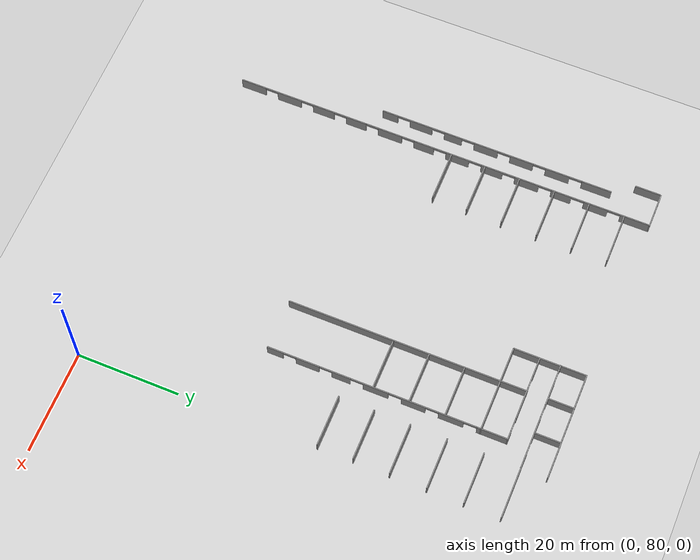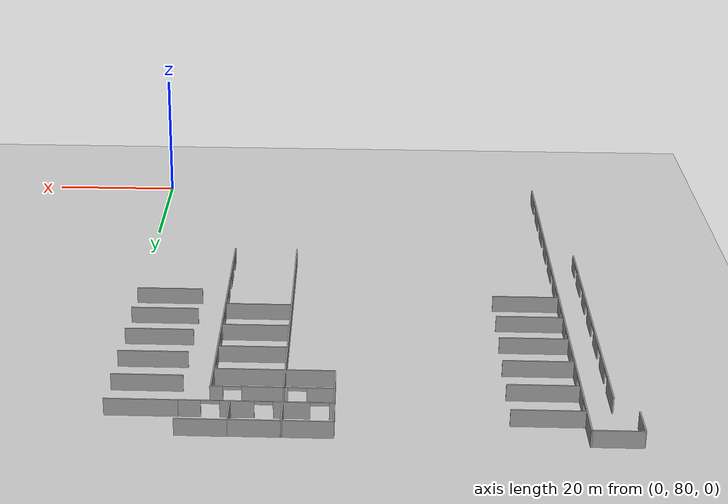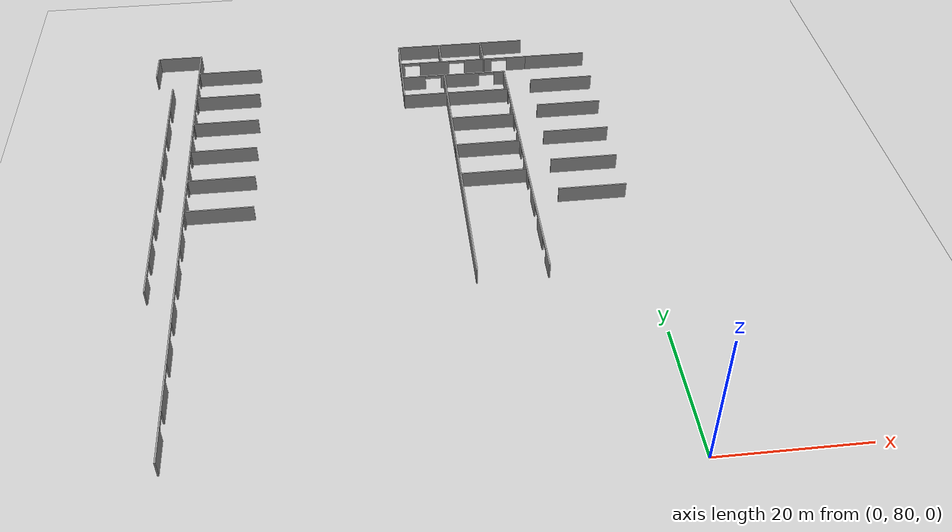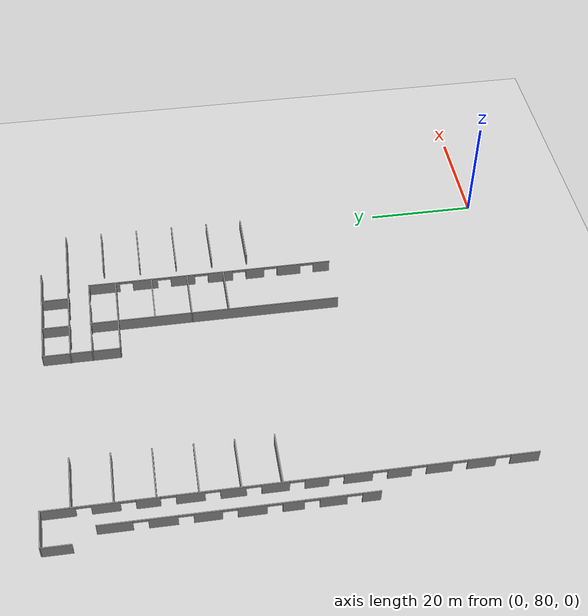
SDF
<sdf version="1.6">
 <world name="default">
  <model name="ground_plane">
   <static>1</static>
   <link name="link">
    <collision name="collision">
     <geometry><plane><normal>0 0 1</normal><size>100 100</size></plane></geometry>
     <surface><friction><ode><mu>100</mu><mu2>50</mu2></ode></friction></surface>
    </collision>
    <visual name="visual">
     <cast_shadows>0</cast_shadows>
     <geometry><plane><normal>0 0 1</normal><size>100 100</size></plane></geometry>
     <material>
      <script><uri>file://media/materials/scripts/gazebo.material</uri><name>Gazebo/Grey</name></script>
     </material>
    </visual>
   </link>
  </model>
  <model name="Jacaranda_v4_clone_0">
   <link name="Wall_0">
    <pose>-8.84429 26.2823 0 0 -0 0</pose>
    <visual name="Wall_0_Visual_0">
     <pose>-10.1136 0 1.25 0 -0 0</pose>
     <geometry><box><size>0.772872 0.2 2.5</size></box></geometry>
     <material>
      <script><uri>file://media/materials/scripts/gazebo.material</uri><name>Gazebo/Grey</name></script>
     </material>
    </visual>
    <collision name="Wall_0_Collision_0">
     <geometry><box><size>0.772872 0.2 2.5</size></box></geometry>
     <pose>-10.1136 0 1.25 0 -0 0</pose>
    </collision>
    <visual name="Wall_0_Visual_1">
     <pose>-4.7572 0 1.25 0 -0 0</pose>
     <geometry><box><size>4.93987 0.2 2.5</size></box></geometry>
     <material>
      <script><uri>file://media/materials/scripts/gazebo.material</uri><name>Gazebo/Grey</name></script>
     </material>
    </visual>
    <collision name="Wall_0_Collision_1">
     <geometry><box><size>4.93987 0.2 2.5</size></box></geometry>
     <pose>-4.7572 0 1.25 0 -0 0</pose>
    </collision>
    <visual name="Wall_0_Visual_2">
     <pose>2.52116 0 1.25 0 -0 0</pose>
     <geometry><box><size>4.61684 0.2 2.5</size></box></geometry>
     <material>
      <script><uri>file://media/materials/scripts/gazebo.material</uri><name>Gazebo/Grey</name></script>
     </material>
    </visual>
    <collision name="Wall_0_Collision_2">
     <geometry><box><size>4.61684 0.2 2.5</size></box></geometry>
     <pose>2.52116 0 1.25 0 -0 0</pose>
    </collision>
    <visual name="Wall_0_Visual_3">
     <pose>8.91479 0 1.25 0 -0 0</pose>
     <geometry><box><size>3.17042 0.2 2.5</size></box></geometry>
     <material>
      <script><uri>file://media/materials/scripts/gazebo.material</uri><name>Gazebo/Grey</name></script>
     </material>
    </visual>
    <collision name="Wall_0_Collision_3">
     <geometry><box><size>3.17042 0.2 2.5</size></box></geometry>
     <pose>8.91479 0 1.25 0 -0 0</pose>
    </collision>
    <visual name="Wall_0_Visual_4">
     <pose>-8.47713 0 2.25 0 -0 0</pose>
     <geometry><box><size>2.5 0.2 0.5</size></box></geometry>
     <material>
      <script><uri>file://media/materials/scripts/gazebo.material</uri><name>Gazebo/Grey</name></script>
     </material>
    </visual>
    <collision name="Wall_0_Collision_4">
     <geometry><box><size>2.5 0.2 0.5</size></box></geometry>
     <pose>-8.47713 0 2.25 0 -0 0</pose>
    </collision>
    <visual name="Wall_0_Visual_5">
     <pose>-1.03726 0 2.25 0 -0 0</pose>
     <geometry><box><size>2.5 0.2 0.5</size></box></geometry>
     <material>
      <script><uri>file://media/materials/scripts/gazebo.material</uri><name>Gazebo/Grey</name></script>
     </material>
    </visual>
    <collision name="Wall_0_Collision_5">
     <geometry><box><size>2.5 0.2 0.5</size></box></geometry>
     <pose>-1.03726 0 2.25 0 -0 0</pose>
    </collision>
    <visual name="Wall_0_Visual_6">
     <pose>6.07958 0 2.25 0 -0 0</pose>
     <geometry><box><size>2.5 0.2 0.5</size></box></geometry>
     <material>
      <script><uri>file://media/materials/scripts/gazebo.material</uri><name>Gazebo/Grey</name></script>
     </material>
    </visual>
    <collision name="Wall_0_Collision_6">
     <geometry><box><size>2.5 0.2 0.5</size></box></geometry>
     <pose>6.07958 0 2.25 0 -0 0</pose>
    </collision>
   </link>
   <link name="Wall_2">
    <collision name="Wall_2_Collision">
     <geometry><box><size>10 0.2 2.5</size></box></geometry>
     <pose>0 0 1.25 0 -0 0</pose>
    </collision>
    <visual name="Wall_2_Visual">
     <pose>0 0 1.25 0 -0 0</pose>
     <geometry><box><size>10 0.2 2.5</size></box></geometry>
     <material>
      <script><uri>file://media/materials/scripts/gazebo.material</uri><name>Gazebo/Grey</name></script>
     </material>
    </visual>
    <velocity_decay><linear>0</linear><angular>0</angular></velocity_decay>
    <pose>-7.44654 3.56016 0 0 -0 0</pose>
   </link>
   <link name="Wall_22">
    <collision name="Wall_22_Collision">
     <geometry><box><size>5 0.2 2.5</size></box></geometry>
     <pose>0 0 1.25 0 -0 0</pose>
    </collision>
    <visual name="Wall_22_Visual">
     <pose>0 0 1.25 0 -0 0</pose>
     <geometry><box><size>5 0.2 2.5</size></box></geometry>
     <material>
      <script><uri>file://media/materials/scripts/gazebo.material</uri><name>Gazebo/Grey</name></script>
     </material>
    </visual>
    <velocity_decay><linear>0</linear><angular>0</angular></velocity_decay>
    <pose>-19.2226 28.7685 0 0 -0 1.5708</pose>
   </link>
   <link name="Wall_24">
    <collision name="Wall_24_Collision">
     <geometry><box><size>7 0.2 2.5</size></box></geometry>
     <pose>0 0 1.25 0 -0 0</pose>
    </collision>
    <visual name="Wall_24_Visual">
     <pose>0 0 1.25 0 -0 0</pose>
     <geometry><box><size>7 0.2 2.5</size></box></geometry>
     <material>
      <script><uri>file://media/materials/scripts/gazebo.material</uri><name>Gazebo/Grey</name></script>
     </material>
    </visual>
    <velocity_decay><linear>0</linear><angular>0</angular></velocity_decay>
    <pose>-15.7827 31.2426 0 0 -0 0</pose>
   </link>
   <link name="Wall_26">
    <collision name="Wall_26_Collision">
     <geometry><box><size>5 0.2 2.5</size></box></geometry>
     <pose>0 0 1.25 0 -0 0</pose>
    </collision>
    <visual name="Wall_26_Visual">
     <pose>0 0 1.25 0 -0 0</pose>
     <geometry><box><size>5 0.2 2.5</size></box></geometry>
     <material>
      <script><uri>file://media/materials/scripts/gazebo.material</uri><name>Gazebo/Grey</name></script>
     </material>
    </visual>
    <velocity_decay><linear>0</linear><angular>0</angular></velocity_decay>
    <pose>-12.42 28.8426 0 0 0 -1.5708</pose>
   </link>
   <link name="Wall_29">
    <collision name="Wall_29_Collision">
     <geometry><box><size>7 0.2 2.5</size></box></geometry>
     <pose>0 0 1.25 0 -0 0</pose>
    </collision>
    <visual name="Wall_29_Visual">
     <pose>0 0 1.25 0 -0 0</pose>
     <geometry><box><size>7 0.2 2.5</size></box></geometry>
     <material>
      <script><uri>file://media/materials/scripts/gazebo.material</uri><name>Gazebo/Grey</name></script>
     </material>
    </visual>
    <velocity_decay><linear>0</linear><angular>0</angular></velocity_decay>
    <pose>-8.85634 31.2426 0 0 -0 0</pose>
   </link>
   <link name="Wall_31">
    <collision name="Wall_31_Collision">
     <geometry><box><size>5 0.2 2.5</size></box></geometry>
     <pose>0 0 1.25 0 -0 0</pose>
    </collision>
    <visual name="Wall_31_Visual">
     <pose>0 0 1.25 0 -0 0</pose>
     <geometry><box><size>5 0.2 2.5</size></box></geometry>
     <material>
      <script><uri>file://media/materials/scripts/gazebo.material</uri><name>Gazebo/Grey</name></script>
     </material>
    </visual>
    <velocity_decay><linear>0</linear><angular>0</angular></velocity_decay>
    <pose>-5.3828 28.6789 0 0 0 -1.5708</pose>
   </link>
   <link name="Wall_33">
    <collision name="Wall_33_Collision">
     <geometry><box><size>7 0.2 2.5</size></box></geometry>
     <pose>0 0 1.25 0 -0 0</pose>
    </collision>
    <visual name="Wall_33_Visual">
     <pose>0 0 1.25 0 -0 0</pose>
     <geometry><box><size>7 0.2 2.5</size></box></geometry>
     <material>
      <script><uri>file://media/materials/scripts/gazebo.material</uri><name>Gazebo/Grey</name></script>
     </material>
    </visual>
    <velocity_decay><linear>0</linear><angular>0</angular></velocity_decay>
    <pose>-1.87207 31.2789 0 0 -0 0</pose>
   </link>
   <link name="Wall_39">
    <collision name="Wall_39_Collision">
     <geometry><box><size>4 0.2 2.5</size></box></geometry>
     <pose>0 0 1.25 0 -0 0</pose>
    </collision>
    <visual name="Wall_39_Visual">
     <pose>0 0 1.25 0 -0 0</pose>
     <geometry><box><size>4 0.2 2.5</size></box></geometry>
     <material>
      <script><uri>file://media/materials/scripts/gazebo.material</uri><name>Gazebo/Grey</name></script>
     </material>
    </visual>
    <velocity_decay><linear>0</linear><angular>0</angular></velocity_decay>
    <pose>-19.206 24.2121 0 0 0 -1.5708</pose>
   </link>
   <link name="Wall_41">
    <pose>-10.8339 22.3118 0 0 -0 0</pose>
    <visual name="Wall_41_Visual_0">
     <pose>-6.54675 0 1.25 0 -0 0</pose>
     <geometry><box><size>3.9065 0.2 2.5</size></box></geometry>
     <material>
      <script><uri>file://media/materials/scripts/gazebo.material</uri><name>Gazebo/Grey</name></script>
     </material>
    </visual>
    <collision name="Wall_41_Collision_0">
     <geometry><box><size>3.9065 0.2 2.5</size></box></geometry>
     <pose>-6.54675 0 1.25 0 -0 0</pose>
    </collision>
    <visual name="Wall_41_Visual_1">
     <pose>1.04072 0 1.25 0 -0 0</pose>
     <geometry><box><size>6.26843 0.2 2.5</size></box></geometry>
     <material>
      <script><uri>file://media/materials/scripts/gazebo.material</uri><name>Gazebo/Grey</name></script>
     </material>
    </visual>
    <collision name="Wall_41_Collision_1">
     <geometry><box><size>6.26843 0.2 2.5</size></box></geometry>
     <pose>1.04072 0 1.25 0 -0 0</pose>
    </collision>
    <visual name="Wall_41_Visual_2">
     <pose>7.58747 0 1.25 0 -0 0</pose>
     <geometry><box><size>1.82507 0.2 2.5</size></box></geometry>
     <material>
      <script><uri>file://media/materials/scripts/gazebo.material</uri><name>Gazebo/Grey</name></script>
     </material>
    </visual>
    <collision name="Wall_41_Collision_2">
     <geometry><box><size>1.82507 0.2 2.5</size></box></geometry>
     <pose>7.58747 0 1.25 0 -0 0</pose>
    </collision>
    <visual name="Wall_41_Visual_3">
     <pose>-3.3435 0 2.25 0 -0 0</pose>
     <geometry><box><size>2.5 0.2 0.5</size></box></geometry>
     <material>
      <script><uri>file://media/materials/scripts/gazebo.material</uri><name>Gazebo/Grey</name></script>
     </material>
    </visual>
    <collision name="Wall_41_Collision_3">
     <geometry><box><size>2.5 0.2 0.5</size></box></geometry>
     <pose>-3.3435 0 2.25 0 -0 0</pose>
    </collision>
    <visual name="Wall_41_Visual_4">
     <pose>5.42493 0 2.25 0 -0 0</pose>
     <geometry><box><size>2.5 0.2 0.5</size></box></geometry>
     <material>
      <script><uri>file://media/materials/scripts/gazebo.material</uri><name>Gazebo/Grey</name></script>
     </material>
    </visual>
    <collision name="Wall_41_Collision_4">
     <geometry><box><size>2.5 0.2 0.5</size></box></geometry>
     <pose>5.42493 0 2.25 0 -0 0</pose>
    </collision>
   </link>
   <link name="Wall_43">
    <pose>-2.46558 -0.8445 0 0 0 -1.5708</pose>
    <visual name="Wall_43_Visual_0">
     <pose>-20.2936 0 1.25 0 -0 0</pose>
     <geometry><box><size>5.88874 0.2 2.5</size></box></geometry>
     <material>
      <script><uri>file://media/materials/scripts/gazebo.material</uri><name>Gazebo/Grey</name></script>
     </material>
    </visual>
    <collision name="Wall_43_Collision_0">
     <geometry><box><size>5.88874 0.2 2.5</size></box></geometry>
     <pose>-20.2936 0 1.25 0 -0 0</pose>
    </collision>
    <visual name="Wall_43_Visual_1">
     <pose>-12.4598 0 1.25 0 -0 0</pose>
     <geometry><box><size>4.77894 0.2 2.5</size></box></geometry>
     <material>
      <script><uri>file://media/materials/scripts/gazebo.material</uri><name>Gazebo/Grey</name></script>
     </material>
    </visual>
    <collision name="Wall_43_Collision_1">
     <geometry><box><size>4.77894 0.2 2.5</size></box></geometry>
     <pose>-12.4598 0 1.25 0 -0 0</pose>
    </collision>
    <visual name="Wall_43_Visual_2">
     <pose>-5.24423 0 1.25 0 -0 0</pose>
     <geometry><box><size>4.65218 0.2 2.5</size></box></geometry>
     <material>
      <script><uri>file://media/materials/scripts/gazebo.material</uri><name>Gazebo/Grey</name></script>
     </material>
    </visual>
    <collision name="Wall_43_Collision_2">
     <geometry><box><size>4.65218 0.2 2.5</size></box></geometry>
     <pose>-5.24423 0 1.25 0 -0 0</pose>
    </collision>
    <visual name="Wall_43_Visual_3">
     <pose>2.00205 0 1.25 0 -0 0</pose>
     <geometry><box><size>4.84039 0.2 2.5</size></box></geometry>
     <material>
      <script><uri>file://media/materials/scripts/gazebo.material</uri><name>Gazebo/Grey</name></script>
     </material>
    </visual>
    <collision name="Wall_43_Collision_3">
     <geometry><box><size>4.84039 0.2 2.5</size></box></geometry>
     <pose>2.00205 0 1.25 0 -0 0</pose>
    </collision>
    <visual name="Wall_43_Visual_4">
     <pose>8.7199 0 1.25 0 -0 0</pose>
     <geometry><box><size>3.5953 0.2 2.5</size></box></geometry>
     <material>
      <script><uri>file://media/materials/scripts/gazebo.material</uri><name>Gazebo/Grey</name></script>
     </material>
    </visual>
    <collision name="Wall_43_Collision_4">
     <geometry><box><size>3.5953 0.2 2.5</size></box></geometry>
     <pose>8.7199 0 1.25 0 -0 0</pose>
    </collision>
    <visual name="Wall_43_Visual_5">
     <pose>15.2946 0 1.25 0 -0 0</pose>
     <geometry><box><size>4.55401 0.2 2.5</size></box></geometry>
     <material>
      <script><uri>file://media/materials/scripts/gazebo.material</uri><name>Gazebo/Grey</name></script>
     </material>
    </visual>
    <collision name="Wall_43_Collision_5">
     <geometry><box><size>4.55401 0.2 2.5</size></box></geometry>
     <pose>15.2946 0 1.25 0 -0 0</pose>
    </collision>
    <visual name="Wall_43_Visual_6">
     <pose>21.6548 0 1.25 0 -0 0</pose>
     <geometry><box><size>3.16644 0.2 2.5</size></box></geometry>
     <material>
      <script><uri>file://media/materials/scripts/gazebo.material</uri><name>Gazebo/Grey</name></script>
     </material>
    </visual>
    <collision name="Wall_43_Collision_6">
     <geometry><box><size>3.16644 0.2 2.5</size></box></geometry>
     <pose>21.6548 0 1.25 0 -0 0</pose>
    </collision>
    <visual name="Wall_43_Visual_7">
     <pose>-16.0993 0 2.25 0 -0 0</pose>
     <geometry><box><size>2.5 0.2 0.5</size></box></geometry>
     <material>
      <script><uri>file://media/materials/scripts/gazebo.material</uri><name>Gazebo/Grey</name></script>
     </material>
    </visual>
    <collision name="Wall_43_Collision_7">
     <geometry><box><size>2.5 0.2 0.5</size></box></geometry>
     <pose>-16.0993 0 2.25 0 -0 0</pose>
    </collision>
    <visual name="Wall_43_Visual_8">
     <pose>-8.82032 0 2.25 0 -0 0</pose>
     <geometry><box><size>2.5 0.2 0.5</size></box></geometry>
     <material>
      <script><uri>file://media/materials/scripts/gazebo.material</uri><name>Gazebo/Grey</name></script>
     </material>
    </visual>
    <collision name="Wall_43_Collision_8">
     <geometry><box><size>2.5 0.2 0.5</size></box></geometry>
     <pose>-8.82032 0 2.25 0 -0 0</pose>
    </collision>
    <visual name="Wall_43_Visual_9">
     <pose>-1.66814 0 2.25 0 -0 0</pose>
     <geometry><box><size>2.5 0.2 0.5</size></box></geometry>
     <material>
      <script><uri>file://media/materials/scripts/gazebo.material</uri><name>Gazebo/Grey</name></script>
     </material>
    </visual>
    <collision name="Wall_43_Collision_9">
     <geometry><box><size>2.5 0.2 0.5</size></box></geometry>
     <pose>-1.66814 0 2.25 0 -0 0</pose>
    </collision>
    <visual name="Wall_43_Visual_10">
     <pose>5.67225 0 2.25 0 -0 0</pose>
     <geometry><box><size>2.5 0.2 0.5</size></box></geometry>
     <material>
      <script><uri>file://media/materials/scripts/gazebo.material</uri><name>Gazebo/Grey</name></script>
     </material>
    </visual>
    <collision name="Wall_43_Collision_10">
     <geometry><box><size>2.5 0.2 0.5</size></box></geometry>
     <pose>5.67225 0 2.25 0 -0 0</pose>
    </collision>
    <visual name="Wall_43_Visual_11">
     <pose>11.7676 0 2.25 0 -0 0</pose>
     <geometry><box><size>2.5 0.2 0.5</size></box></geometry>
     <material>
      <script><uri>file://media/materials/scripts/gazebo.material</uri><name>Gazebo/Grey</name></script>
     </material>
    </visual>
    <collision name="Wall_43_Collision_11">
     <geometry><box><size>2.5 0.2 0.5</size></box></geometry>
     <pose>11.7676 0 2.25 0 -0 0</pose>
    </collision>
    <visual name="Wall_43_Visual_12">
     <pose>18.8216 0 2.25 0 -0 0</pose>
     <geometry><box><size>2.5 0.2 0.5</size></box></geometry>
     <material>
      <script><uri>file://media/materials/scripts/gazebo.material</uri><name>Gazebo/Grey</name></script>
     </material>
    </visual>
    <collision name="Wall_43_Collision_12">
     <geometry><box><size>2.5 0.2 0.5</size></box></geometry>
     <pose>18.8216 0 2.25 0 -0 0</pose>
    </collision>
   </link>
   <link name="Wall_45">
    <collision name="Wall_45_Collision">
     <geometry><box><size>5 0.2 2.5</size></box></geometry>
     <pose>0 0 1.25 0 -0 0</pose>
    </collision>
    <visual name="Wall_45_Visual">
     <pose>0 0 1.25 0 -0 0</pose>
     <geometry><box><size>5 0.2 2.5</size></box></geometry>
     <material>
      <script><uri>file://media/materials/scripts/gazebo.material</uri><name>Gazebo/Grey</name></script>
     </material>
    </visual>
    <velocity_decay><linear>0</linear><angular>0</angular></velocity_decay>
    <pose>-19.2149 19.8047 0 0 0 -1.5708</pose>
   </link>
   <link name="Wall_47">
    <collision name="Wall_47_Collision">
     <geometry><box><size>16.9069 0.2 2.5</size></box></geometry>
     <pose>0 0 1.25 0 -0 0</pose>
    </collision>
    <visual name="Wall_47_Visual">
     <pose>0 0 1.25 0 -0 0</pose>
     <geometry><box><size>16.9069 0.2 2.5</size></box></geometry>
     <material>
      <script><uri>file://media/materials/scripts/gazebo.material</uri><name>Gazebo/Grey</name></script>
     </material>
    </visual>
    <velocity_decay><linear>0</linear><angular>0</angular></velocity_decay>
    <pose>-10.7923 17.2628 0 0 -0 0</pose>
   </link>
   <link name="Wall_49">
    <collision name="Wall_49_Collision">
     <geometry><box><size>46.4765 0.2 2.5</size></box></geometry>
     <pose>0 0 1.25 0 -0 0</pose>
    </collision>
    <visual name="Wall_49_Visual">
     <pose>0 0 1.25 0 -0 0</pose>
     <geometry><box><size>46.4765 0.2 2.5</size></box></geometry>
     <material>
      <script><uri>file://media/materials/scripts/gazebo.material</uri><name>Gazebo/Grey</name></script>
     </material>
    </visual>
    <velocity_decay><linear>0</linear><angular>0</angular></velocity_decay>
    <pose>-12.3393 -0.801467 0 0 0 -1.5708</pose>
   </link>
   <link name="Wall_55">
    <collision name="Wall_55_Collision">
     <geometry><box><size>10 0.2 2.5</size></box></geometry>
     <pose>0 0 1.25 0 -0 0</pose>
    </collision>
    <visual name="Wall_55_Visual">
     <pose>0 0 1.25 0 -0 0</pose>
     <geometry><box><size>10 0.2 2.5</size></box></geometry>
     <material>
      <script><uri>file://media/materials/scripts/gazebo.material</uri><name>Gazebo/Grey</name></script>
     </material>
    </visual>
    <velocity_decay><linear>0</linear><angular>0</angular></velocity_decay>
    <pose>-7.39012 10.4267 0 0 -0 3.14159</pose>
   </link>
   <link name="Wall_59">
    <collision name="Wall_59_Collision">
     <geometry><box><size>10 0.2 2.5</size></box></geometry>
     <pose>0 0 1.25 0 -0 0</pose>
    </collision>
    <visual name="Wall_59_Visual">
     <pose>0 0 1.25 0 -0 0</pose>
     <geometry><box><size>10 0.2 2.5</size></box></geometry>
     <material>
      <script><uri>file://media/materials/scripts/gazebo.material</uri><name>Gazebo/Grey</name></script>
     </material>
    </visual>
    <velocity_decay><linear>0</linear><angular>0</angular></velocity_decay>
    <pose>-7.43285 -3.41806 0 0 -0 0</pose>
   </link>
   <link name="Wall_67">
    <collision name="Wall_67_Collision">
     <geometry><box><size>10 0.2 2.5</size></box></geometry>
     <pose>0 0 1.25 0 -0 0</pose>
    </collision>
    <visual name="Wall_67_Visual">
     <pose>0 0 1.25 0 -0 0</pose>
     <geometry><box><size>10 0.2 2.5</size></box></geometry>
     <material>
      <script><uri>file://media/materials/scripts/gazebo.material</uri><name>Gazebo/Grey</name></script>
     </material>
    </visual>
    <velocity_decay><linear>0</linear><angular>0</angular></velocity_decay>
    <pose>6.51966 26.3099 0 0 -0 0</pose>
   </link>
   <link name="Wall_71">
    <collision name="Wall_71_Collision">
     <geometry><box><size>10 0.2 2.5</size></box></geometry>
     <pose>0 0 1.25 0 -0 0</pose>
    </collision>
    <visual name="Wall_71_Visual">
     <pose>0 0 1.25 0 -0 0</pose>
     <geometry><box><size>10 0.2 2.5</size></box></geometry>
     <material>
      <script><uri>file://media/materials/scripts/gazebo.material</uri><name>Gazebo/Grey</name></script>
     </material>
    </visual>
    <velocity_decay><linear>0</linear><angular>0</angular></velocity_decay>
    <pose>6.52213 19.3829 0 0 -0 0</pose>
   </link>
   <link name="Wall_73">
    <collision name="Wall_73_Collision">
     <geometry><box><size>10 0.2 2.5</size></box></geometry>
     <pose>0 0 1.25 0 -0 0</pose>
    </collision>
    <visual name="Wall_73_Visual">
     <pose>0 0 1.25 0 -0 0</pose>
     <geometry><box><size>10 0.2 2.5</size></box></geometry>
     <material>
      <script><uri>file://media/materials/scripts/gazebo.material</uri><name>Gazebo/Grey</name></script>
     </material>
    </visual>
    <velocity_decay><linear>0</linear><angular>0</angular></velocity_decay>
    <pose>6.52323 12.4215 0 0 -0 0</pose>
   </link>
   <link name="Wall_75">
    <collision name="Wall_75_Collision">
     <geometry><box><size>10 0.2 2.5</size></box></geometry>
     <pose>0 0 1.25 0 -0 0</pose>
    </collision>
    <visual name="Wall_75_Visual">
     <pose>0 0 1.25 0 -0 0</pose>
     <geometry><box><size>10 0.2 2.5</size></box></geometry>
     <material>
      <script><uri>file://media/materials/scripts/gazebo.material</uri><name>Gazebo/Grey</name></script>
     </material>
    </visual>
    <velocity_decay><linear>0</linear><angular>0</angular></velocity_decay>
    <pose>6.45075 5.39511 0 0 -0 0</pose>
   </link>
   <link name="Wall_77">
    <collision name="Wall_77_Collision">
     <geometry><box><size>10 0.2 2.5</size></box></geometry>
     <pose>0 0 1.25 0 -0 0</pose>
    </collision>
    <visual name="Wall_77_Visual">
     <pose>0 0 1.25 0 -0 0</pose>
     <geometry><box><size>10 0.2 2.5</size></box></geometry>
     <material>
      <script><uri>file://media/materials/scripts/gazebo.material</uri><name>Gazebo/Grey</name></script>
     </material>
    </visual>
    <velocity_decay><linear>0</linear><angular>0</angular></velocity_decay>
    <pose>6.41479 -1.55896 0 0 -0 0</pose>
   </link>
   <link name="Wall_79">
    <collision name="Wall_79_Collision">
     <geometry><box><size>10 0.2 2.5</size></box></geometry>
     <pose>0 0 1.25 0 -0 0</pose>
    </collision>
    <visual name="Wall_79_Visual">
     <pose>0 0 1.25 0 -0 0</pose>
     <geometry><box><size>10 0.2 2.5</size></box></geometry>
     <material>
      <script><uri>file://media/materials/scripts/gazebo.material</uri><name>Gazebo/Grey</name></script>
     </material>
    </visual>
    <velocity_decay><linear>0</linear><angular>0</angular></velocity_decay>
    <pose>6.41201 -8.39437 0 0 -0 0</pose>
   </link>
   <static>1</static>
   <pose>-11.2872 135.686 0 0 -0 0</pose>
  </model>
  <model name="Jacaranda_v4_clone_1">
   <link name="Wall_31">
    <collision name="Wall_31_Collision">
     <geometry><box><size>5 0.2 2.5</size></box></geometry>
     <pose>0 0 1.25 0 -0 0</pose>
    </collision>
    <visual name="Wall_31_Visual">
     <pose>0 0 1.25 0 -0 0</pose>
     <geometry><box><size>5 0.2 2.5</size></box></geometry>
     <material>
      <script><uri>file://media/materials/scripts/gazebo.material</uri><name>Gazebo/Grey</name></script>
     </material>
    </visual>
    <velocity_decay><linear>0</linear><angular>0</angular></velocity_decay>
    <pose>-5.3828 28.6789 0 0 0 -1.5708</pose>
   </link>
   <link name="Wall_33">
    <collision name="Wall_33_Collision">
     <geometry><box><size>7 0.2 2.5</size></box></geometry>
     <pose>0 0 1.25 0 -0 0</pose>
    </collision>
    <visual name="Wall_33_Visual">
     <pose>0 0 1.25 0 -0 0</pose>
     <geometry><box><size>7 0.2 2.5</size></box></geometry>
     <material>
      <script><uri>file://media/materials/scripts/gazebo.material</uri><name>Gazebo/Grey</name></script>
     </material>
    </visual>
    <velocity_decay><linear>0</linear><angular>0</angular></velocity_decay>
    <pose>-1.87207 31.2789 0 0 -0 0</pose>
   </link>
   <link name="Wall_35">
    <pose>1.50679 -10.3195 0 0 0 -1.5708</pose>
    <visual name="Wall_35_Visual_0">
     <pose>-38.7718 0 1.25 0 -0 0</pose>
     <geometry><box><size>5.89333 0.2 2.5</size></box></geometry>
     <material>
      <script><uri>file://media/materials/scripts/gazebo.material</uri><name>Gazebo/Grey</name></script>
     </material>
    </visual>
    <collision name="Wall_35_Collision_0">
     <geometry><box><size>5.89333 0.2 2.5</size></box></geometry>
     <pose>-38.7718 0 1.25 0 -0 0</pose>
    </collision>
    <visual name="Wall_35_Visual_1">
     <pose>-30.9611 0 1.25 0 -0 0</pose>
     <geometry><box><size>4.72808 0.2 2.5</size></box></geometry>
     <material>
      <script><uri>file://media/materials/scripts/gazebo.material</uri><name>Gazebo/Grey</name></script>
     </material>
    </visual>
    <collision name="Wall_35_Collision_1">
     <geometry><box><size>4.72808 0.2 2.5</size></box></geometry>
     <pose>-30.9611 0 1.25 0 -0 0</pose>
    </collision>
    <visual name="Wall_35_Visual_2">
     <pose>-24.0927 0 1.25 0 -0 0</pose>
     <geometry><box><size>4.00867 0.2 2.5</size></box></geometry>
     <material>
      <script><uri>file://media/materials/scripts/gazebo.material</uri><name>Gazebo/Grey</name></script>
     </material>
    </visual>
    <collision name="Wall_35_Collision_2">
     <geometry><box><size>4.00867 0.2 2.5</size></box></geometry>
     <pose>-24.0927 0 1.25 0 -0 0</pose>
    </collision>
    <visual name="Wall_35_Visual_3">
     <pose>-17.1876 0 1.25 0 -0 0</pose>
     <geometry><box><size>4.80162 0.2 2.5</size></box></geometry>
     <material>
      <script><uri>file://media/materials/scripts/gazebo.material</uri><name>Gazebo/Grey</name></script>
     </material>
    </visual>
    <collision name="Wall_35_Collision_3">
     <geometry><box><size>4.80162 0.2 2.5</size></box></geometry>
     <pose>-17.1876 0 1.25 0 -0 0</pose>
    </collision>
    <visual name="Wall_35_Visual_4">
     <pose>-10.1336 0 1.25 0 -0 0</pose>
     <geometry><box><size>4.3064 0.2 2.5</size></box></geometry>
     <material>
      <script><uri>file://media/materials/scripts/gazebo.material</uri><name>Gazebo/Grey</name></script>
     </material>
    </visual>
    <collision name="Wall_35_Collision_4">
     <geometry><box><size>4.3064 0.2 2.5</size></box></geometry>
     <pose>-10.1336 0 1.25 0 -0 0</pose>
    </collision>
    <visual name="Wall_35_Visual_5">
     <pose>-3.14147 0 1.25 0 -0 0</pose>
     <geometry><box><size>4.67776 0.2 2.5</size></box></geometry>
     <material>
      <script><uri>file://media/materials/scripts/gazebo.material</uri><name>Gazebo/Grey</name></script>
     </material>
    </visual>
    <collision name="Wall_35_Collision_5">
     <geometry><box><size>4.67776 0.2 2.5</size></box></geometry>
     <pose>-3.14147 0 1.25 0 -0 0</pose>
    </collision>
    <visual name="Wall_35_Visual_6">
     <pose>3.7295 0 1.25 0 -0 0</pose>
     <geometry><box><size>4.06418 0.2 2.5</size></box></geometry>
     <material>
      <script><uri>file://media/materials/scripts/gazebo.material</uri><name>Gazebo/Grey</name></script>
     </material>
    </visual>
    <collision name="Wall_35_Collision_6">
     <geometry><box><size>4.06418 0.2 2.5</size></box></geometry>
     <pose>3.7295 0 1.25 0 -0 0</pose>
    </collision>
    <visual name="Wall_35_Visual_7">
     <pose>10.6976 0 1.25 0 -0 0</pose>
     <geometry><box><size>4.872 0.2 2.5</size></box></geometry>
     <material>
      <script><uri>file://media/materials/scripts/gazebo.material</uri><name>Gazebo/Grey</name></script>
     </material>
    </visual>
    <collision name="Wall_35_Collision_7">
     <geometry><box><size>4.872 0.2 2.5</size></box></geometry>
     <pose>10.6976 0 1.25 0 -0 0</pose>
    </collision>
    <visual name="Wall_35_Visual_8">
     <pose>17.7003 0 1.25 0 -0 0</pose>
     <geometry><box><size>4.13333 0.2 2.5</size></box></geometry>
     <material>
      <script><uri>file://media/materials/scripts/gazebo.material</uri><name>Gazebo/Grey</name></script>
     </material>
    </visual>
    <collision name="Wall_35_Collision_8">
     <geometry><box><size>4.13333 0.2 2.5</size></box></geometry>
     <pose>17.7003 0 1.25 0 -0 0</pose>
    </collision>
    <visual name="Wall_35_Visual_9">
     <pose>24.507 0 1.25 0 -0 0</pose>
     <geometry><box><size>4.48015 0.2 2.5</size></box></geometry>
     <material>
      <script><uri>file://media/materials/scripts/gazebo.material</uri><name>Gazebo/Grey</name></script>
     </material>
    </visual>
    <collision name="Wall_35_Collision_9">
     <geometry><box><size>4.48015 0.2 2.5</size></box></geometry>
     <pose>24.507 0 1.25 0 -0 0</pose>
    </collision>
    <visual name="Wall_35_Visual_10">
     <pose>31.7056 0 1.25 0 -0 0</pose>
     <geometry><box><size>4.91715 0.2 2.5</size></box></geometry>
     <material>
      <script><uri>file://media/materials/scripts/gazebo.material</uri><name>Gazebo/Grey</name></script>
     </material>
    </visual>
    <collision name="Wall_35_Collision_10">
     <geometry><box><size>4.91715 0.2 2.5</size></box></geometry>
     <pose>31.7056 0 1.25 0 -0 0</pose>
    </collision>
    <visual name="Wall_35_Visual_11">
     <pose>39.1913 0 1.25 0 -0 0</pose>
     <geometry><box><size>5.05424 0.2 2.5</size></box></geometry>
     <material>
      <script><uri>file://media/materials/scripts/gazebo.material</uri><name>Gazebo/Grey</name></script>
     </material>
    </visual>
    <collision name="Wall_35_Collision_11">
     <geometry><box><size>5.05424 0.2 2.5</size></box></geometry>
     <pose>39.1913 0 1.25 0 -0 0</pose>
    </collision>
    <visual name="Wall_35_Visual_12">
     <pose>-34.5751 0 2.25 0 -0 0</pose>
     <geometry><box><size>2.5 0.2 0.5</size></box></geometry>
     <material>
      <script><uri>file://media/materials/scripts/gazebo.material</uri><name>Gazebo/Grey</name></script>
     </material>
    </visual>
    <collision name="Wall_35_Collision_12">
     <geometry><box><size>2.5 0.2 0.5</size></box></geometry>
     <pose>-34.5751 0 2.25 0 -0 0</pose>
    </collision>
    <visual name="Wall_35_Visual_13">
     <pose>-27.347 0 2.25 0 -0 0</pose>
     <geometry><box><size>2.5 0.2 0.5</size></box></geometry>
     <material>
      <script><uri>file://media/materials/scripts/gazebo.material</uri><name>Gazebo/Grey</name></script>
     </material>
    </visual>
    <collision name="Wall_35_Collision_13">
     <geometry><box><size>2.5 0.2 0.5</size></box></geometry>
     <pose>-27.347 0 2.25 0 -0 0</pose>
    </collision>
    <visual name="Wall_35_Visual_14">
     <pose>-20.8384 0 2.25 0 -0 0</pose>
     <geometry><box><size>2.5 0.2 0.5</size></box></geometry>
     <material>
      <script><uri>file://media/materials/scripts/gazebo.material</uri><name>Gazebo/Grey</name></script>
     </material>
    </visual>
    <collision name="Wall_35_Collision_14">
     <geometry><box><size>2.5 0.2 0.5</size></box></geometry>
     <pose>-20.8384 0 2.25 0 -0 0</pose>
    </collision>
    <visual name="Wall_35_Visual_15">
     <pose>-13.5368 0 2.25 0 -0 0</pose>
     <geometry><box><size>2.5 0.2 0.5</size></box></geometry>
     <material>
      <script><uri>file://media/materials/scripts/gazebo.material</uri><name>Gazebo/Grey</name></script>
     </material>
    </visual>
    <collision name="Wall_35_Collision_15">
     <geometry><box><size>2.5 0.2 0.5</size></box></geometry>
     <pose>-13.5368 0 2.25 0 -0 0</pose>
    </collision>
    <visual name="Wall_35_Visual_16">
     <pose>-6.73035 0 2.25 0 -0 0</pose>
     <geometry><box><size>2.5 0.2 0.5</size></box></geometry>
     <material>
      <script><uri>file://media/materials/scripts/gazebo.material</uri><name>Gazebo/Grey</name></script>
     </material>
    </visual>
    <collision name="Wall_35_Collision_16">
     <geometry><box><size>2.5 0.2 0.5</size></box></geometry>
     <pose>-6.73035 0 2.25 0 -0 0</pose>
    </collision>
    <visual name="Wall_35_Visual_17">
     <pose>0.447409 0 2.25 0 -0 0</pose>
     <geometry><box><size>2.5 0.2 0.5</size></box></geometry>
     <material>
      <script><uri>file://media/materials/scripts/gazebo.material</uri><name>Gazebo/Grey</name></script>
     </material>
    </visual>
    <collision name="Wall_35_Collision_17">
     <geometry><box><size>2.5 0.2 0.5</size></box></geometry>
     <pose>0.447409 0 2.25 0 -0 0</pose>
    </collision>
    <visual name="Wall_35_Visual_18">
     <pose>7.01159 0 2.25 0 -0 0</pose>
     <geometry><box><size>2.5 0.2 0.5</size></box></geometry>
     <material>
      <script><uri>file://media/materials/scripts/gazebo.material</uri><name>Gazebo/Grey</name></script>
     </material>
    </visual>
    <collision name="Wall_35_Collision_18">
     <geometry><box><size>2.5 0.2 0.5</size></box></geometry>
     <pose>7.01159 0 2.25 0 -0 0</pose>
    </collision>
    <visual name="Wall_35_Visual_19">
     <pose>14.3836 0 2.25 0 -0 0</pose>
     <geometry><box><size>2.5 0.2 0.5</size></box></geometry>
     <material>
      <script><uri>file://media/materials/scripts/gazebo.material</uri><name>Gazebo/Grey</name></script>
     </material>
    </visual>
    <collision name="Wall_35_Collision_19">
     <geometry><box><size>2.5 0.2 0.5</size></box></geometry>
     <pose>14.3836 0 2.25 0 -0 0</pose>
    </collision>
    <visual name="Wall_35_Visual_20">
     <pose>21.0169 0 2.25 0 -0 0</pose>
     <geometry><box><size>2.5 0.2 0.5</size></box></geometry>
     <material>
      <script><uri>file://media/materials/scripts/gazebo.material</uri><name>Gazebo/Grey</name></script>
     </material>
    </visual>
    <collision name="Wall_35_Collision_20">
     <geometry><box><size>2.5 0.2 0.5</size></box></geometry>
     <pose>21.0169 0 2.25 0 -0 0</pose>
    </collision>
    <visual name="Wall_35_Visual_21">
     <pose>27.9971 0 2.25 0 -0 0</pose>
     <geometry><box><size>2.5 0.2 0.5</size></box></geometry>
     <material>
      <script><uri>file://media/materials/scripts/gazebo.material</uri><name>Gazebo/Grey</name></script>
     </material>
    </visual>
    <collision name="Wall_35_Collision_21">
     <geometry><box><size>2.5 0.2 0.5</size></box></geometry>
     <pose>27.9971 0 2.25 0 -0 0</pose>
    </collision>
    <visual name="Wall_35_Visual_22">
     <pose>35.4142 0 2.25 0 -0 0</pose>
     <geometry><box><size>2.5 0.2 0.5</size></box></geometry>
     <material>
      <script><uri>file://media/materials/scripts/gazebo.material</uri><name>Gazebo/Grey</name></script>
     </material>
    </visual>
    <collision name="Wall_35_Collision_22">
     <geometry><box><size>2.5 0.2 0.5</size></box></geometry>
     <pose>35.4142 0 2.25 0 -0 0</pose>
    </collision>
   </link>
   <link name="Wall_43">
    <pose>-2.46558 -0.8445 0 0 0 -1.5708</pose>
    <visual name="Wall_43_Visual_0">
     <pose>-20.2936 0 1.25 0 -0 0</pose>
     <geometry><box><size>5.88874 0.2 2.5</size></box></geometry>
     <material>
      <script><uri>file://media/materials/scripts/gazebo.material</uri><name>Gazebo/Grey</name></script>
     </material>
    </visual>
    <collision name="Wall_43_Collision_0">
     <geometry><box><size>5.88874 0.2 2.5</size></box></geometry>
     <pose>-20.2936 0 1.25 0 -0 0</pose>
    </collision>
    <visual name="Wall_43_Visual_1">
     <pose>-12.4598 0 1.25 0 -0 0</pose>
     <geometry><box><size>4.77894 0.2 2.5</size></box></geometry>
     <material>
      <script><uri>file://media/materials/scripts/gazebo.material</uri><name>Gazebo/Grey</name></script>
     </material>
    </visual>
    <collision name="Wall_43_Collision_1">
     <geometry><box><size>4.77894 0.2 2.5</size></box></geometry>
     <pose>-12.4598 0 1.25 0 -0 0</pose>
    </collision>
    <visual name="Wall_43_Visual_2">
     <pose>-5.24423 0 1.25 0 -0 0</pose>
     <geometry><box><size>4.65218 0.2 2.5</size></box></geometry>
     <material>
      <script><uri>file://media/materials/scripts/gazebo.material</uri><name>Gazebo/Grey</name></script>
     </material>
    </visual>
    <collision name="Wall_43_Collision_2">
     <geometry><box><size>4.65218 0.2 2.5</size></box></geometry>
     <pose>-5.24423 0 1.25 0 -0 0</pose>
    </collision>
    <visual name="Wall_43_Visual_3">
     <pose>2.00205 0 1.25 0 -0 0</pose>
     <geometry><box><size>4.84039 0.2 2.5</size></box></geometry>
     <material>
      <script><uri>file://media/materials/scripts/gazebo.material</uri><name>Gazebo/Grey</name></script>
     </material>
    </visual>
    <collision name="Wall_43_Collision_3">
     <geometry><box><size>4.84039 0.2 2.5</size></box></geometry>
     <pose>2.00205 0 1.25 0 -0 0</pose>
    </collision>
    <visual name="Wall_43_Visual_4">
     <pose>8.7199 0 1.25 0 -0 0</pose>
     <geometry><box><size>3.5953 0.2 2.5</size></box></geometry>
     <material>
      <script><uri>file://media/materials/scripts/gazebo.material</uri><name>Gazebo/Grey</name></script>
     </material>
    </visual>
    <collision name="Wall_43_Collision_4">
     <geometry><box><size>3.5953 0.2 2.5</size></box></geometry>
     <pose>8.7199 0 1.25 0 -0 0</pose>
    </collision>
    <visual name="Wall_43_Visual_5">
     <pose>15.2946 0 1.25 0 -0 0</pose>
     <geometry><box><size>4.55401 0.2 2.5</size></box></geometry>
     <material>
      <script><uri>file://media/materials/scripts/gazebo.material</uri><name>Gazebo/Grey</name></script>
     </material>
    </visual>
    <collision name="Wall_43_Collision_5">
     <geometry><box><size>4.55401 0.2 2.5</size></box></geometry>
     <pose>15.2946 0 1.25 0 -0 0</pose>
    </collision>
    <visual name="Wall_43_Visual_6">
     <pose>21.6548 0 1.25 0 -0 0</pose>
     <geometry><box><size>3.16644 0.2 2.5</size></box></geometry>
     <material>
      <script><uri>file://media/materials/scripts/gazebo.material</uri><name>Gazebo/Grey</name></script>
     </material>
    </visual>
    <collision name="Wall_43_Collision_6">
     <geometry><box><size>3.16644 0.2 2.5</size></box></geometry>
     <pose>21.6548 0 1.25 0 -0 0</pose>
    </collision>
    <visual name="Wall_43_Visual_7">
     <pose>-16.0993 0 2.25 0 -0 0</pose>
     <geometry><box><size>2.5 0.2 0.5</size></box></geometry>
     <material>
      <script><uri>file://media/materials/scripts/gazebo.material</uri><name>Gazebo/Grey</name></script>
     </material>
    </visual>
    <collision name="Wall_43_Collision_7">
     <geometry><box><size>2.5 0.2 0.5</size></box></geometry>
     <pose>-16.0993 0 2.25 0 -0 0</pose>
    </collision>
    <visual name="Wall_43_Visual_8">
     <pose>-8.82032 0 2.25 0 -0 0</pose>
     <geometry><box><size>2.5 0.2 0.5</size></box></geometry>
     <material>
      <script><uri>file://media/materials/scripts/gazebo.material</uri><name>Gazebo/Grey</name></script>
     </material>
    </visual>
    <collision name="Wall_43_Collision_8">
     <geometry><box><size>2.5 0.2 0.5</size></box></geometry>
     <pose>-8.82032 0 2.25 0 -0 0</pose>
    </collision>
    <visual name="Wall_43_Visual_9">
     <pose>-1.66814 0 2.25 0 -0 0</pose>
     <geometry><box><size>2.5 0.2 0.5</size></box></geometry>
     <material>
      <script><uri>file://media/materials/scripts/gazebo.material</uri><name>Gazebo/Grey</name></script>
     </material>
    </visual>
    <collision name="Wall_43_Collision_9">
     <geometry><box><size>2.5 0.2 0.5</size></box></geometry>
     <pose>-1.66814 0 2.25 0 -0 0</pose>
    </collision>
    <visual name="Wall_43_Visual_10">
     <pose>5.67225 0 2.25 0 -0 0</pose>
     <geometry><box><size>2.5 0.2 0.5</size></box></geometry>
     <material>
      <script><uri>file://media/materials/scripts/gazebo.material</uri><name>Gazebo/Grey</name></script>
     </material>
    </visual>
    <collision name="Wall_43_Collision_10">
     <geometry><box><size>2.5 0.2 0.5</size></box></geometry>
     <pose>5.67225 0 2.25 0 -0 0</pose>
    </collision>
    <visual name="Wall_43_Visual_11">
     <pose>11.7676 0 2.25 0 -0 0</pose>
     <geometry><box><size>2.5 0.2 0.5</size></box></geometry>
     <material>
      <script><uri>file://media/materials/scripts/gazebo.material</uri><name>Gazebo/Grey</name></script>
     </material>
    </visual>
    <collision name="Wall_43_Collision_11">
     <geometry><box><size>2.5 0.2 0.5</size></box></geometry>
     <pose>11.7676 0 2.25 0 -0 0</pose>
    </collision>
    <visual name="Wall_43_Visual_12">
     <pose>18.8216 0 2.25 0 -0 0</pose>
     <geometry><box><size>2.5 0.2 0.5</size></box></geometry>
     <material>
      <script><uri>file://media/materials/scripts/gazebo.material</uri><name>Gazebo/Grey</name></script>
     </material>
    </visual>
    <collision name="Wall_43_Collision_12">
     <geometry><box><size>2.5 0.2 0.5</size></box></geometry>
     <pose>18.8216 0 2.25 0 -0 0</pose>
    </collision>
   </link>
   <link name="Wall_67">
    <collision name="Wall_67_Collision">
     <geometry><box><size>10 0.2 2.5</size></box></geometry>
     <pose>0 0 1.25 0 -0 0</pose>
    </collision>
    <visual name="Wall_67_Visual">
     <pose>0 0 1.25 0 -0 0</pose>
     <geometry><box><size>10 0.2 2.5</size></box></geometry>
     <material>
      <script><uri>file://media/materials/scripts/gazebo.material</uri><name>Gazebo/Grey</name></script>
     </material>
    </visual>
    <velocity_decay><linear>0</linear><angular>0</angular></velocity_decay>
    <pose>6.51966 26.3099 0 0 -0 0</pose>
   </link>
   <link name="Wall_71">
    <collision name="Wall_71_Collision">
     <geometry><box><size>10 0.2 2.5</size></box></geometry>
     <pose>0 0 1.25 0 -0 0</pose>
    </collision>
    <visual name="Wall_71_Visual">
     <pose>0 0 1.25 0 -0 0</pose>
     <geometry><box><size>10 0.2 2.5</size></box></geometry>
     <material>
      <script><uri>file://media/materials/scripts/gazebo.material</uri><name>Gazebo/Grey</name></script>
     </material>
    </visual>
    <velocity_decay><linear>0</linear><angular>0</angular></velocity_decay>
    <pose>6.52213 19.3829 0 0 -0 0</pose>
   </link>
   <link name="Wall_73">
    <collision name="Wall_73_Collision">
     <geometry><box><size>10 0.2 2.5</size></box></geometry>
     <pose>0 0 1.25 0 -0 0</pose>
    </collision>
    <visual name="Wall_73_Visual">
     <pose>0 0 1.25 0 -0 0</pose>
     <geometry><box><size>10 0.2 2.5</size></box></geometry>
     <material>
      <script><uri>file://media/materials/scripts/gazebo.material</uri><name>Gazebo/Grey</name></script>
     </material>
    </visual>
    <velocity_decay><linear>0</linear><angular>0</angular></velocity_decay>
    <pose>6.52323 12.4215 0 0 -0 0</pose>
   </link>
   <link name="Wall_75">
    <collision name="Wall_75_Collision">
     <geometry><box><size>10 0.2 2.5</size></box></geometry>
     <pose>0 0 1.25 0 -0 0</pose>
    </collision>
    <visual name="Wall_75_Visual">
     <pose>0 0 1.25 0 -0 0</pose>
     <geometry><box><size>10 0.2 2.5</size></box></geometry>
     <material>
      <script><uri>file://media/materials/scripts/gazebo.material</uri><name>Gazebo/Grey</name></script>
     </material>
    </visual>
    <velocity_decay><linear>0</linear><angular>0</angular></velocity_decay>
    <pose>6.45075 5.39511 0 0 -0 0</pose>
   </link>
   <link name="Wall_77">
    <collision name="Wall_77_Collision">
     <geometry><box><size>10 0.2 2.5</size></box></geometry>
     <pose>0 0 1.25 0 -0 0</pose>
    </collision>
    <visual name="Wall_77_Visual">
     <pose>0 0 1.25 0 -0 0</pose>
     <geometry><box><size>10 0.2 2.5</size></box></geometry>
     <material>
      <script><uri>file://media/materials/scripts/gazebo.material</uri><name>Gazebo/Grey</name></script>
     </material>
    </visual>
    <velocity_decay><linear>0</linear><angular>0</angular></velocity_decay>
    <pose>6.41479 -1.55896 0 0 -0 0</pose>
   </link>
   <link name="Wall_79">
    <collision name="Wall_79_Collision">
     <geometry><box><size>10 0.2 2.5</size></box></geometry>
     <pose>0 0 1.25 0 -0 0</pose>
    </collision>
    <visual name="Wall_79_Visual">
     <pose>0 0 1.25 0 -0 0</pose>
     <geometry><box><size>10 0.2 2.5</size></box></geometry>
     <material>
      <script><uri>file://media/materials/scripts/gazebo.material</uri><name>Gazebo/Grey</name></script>
     </material>
    </visual>
    <velocity_decay><linear>0</linear><angular>0</angular></velocity_decay>
    <pose>6.41201 -8.39437 0 0 -0 0</pose>
   </link>
   <static>1</static>
   <pose>-65.1832 136.528 0 0 -0 0</pose>
  </model>
 </world>
</sdf>
